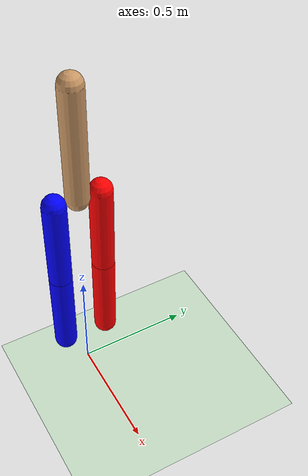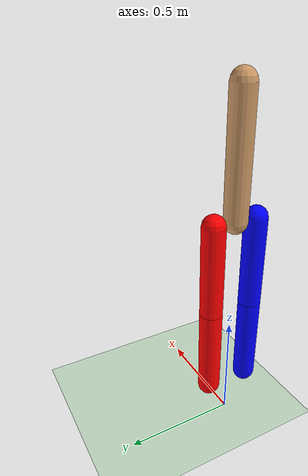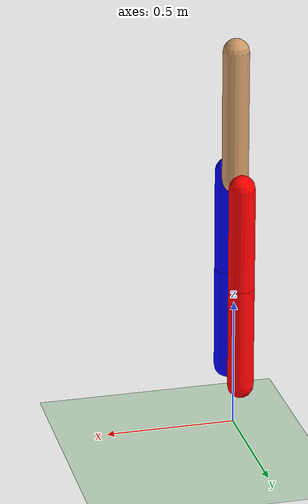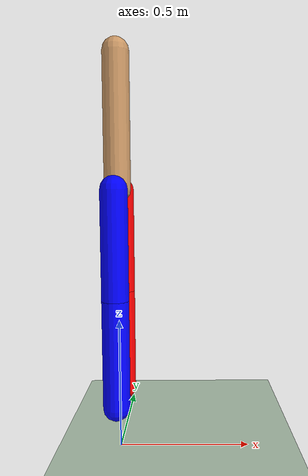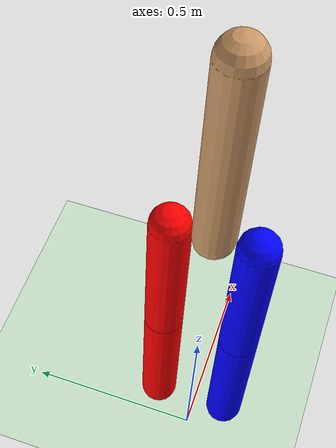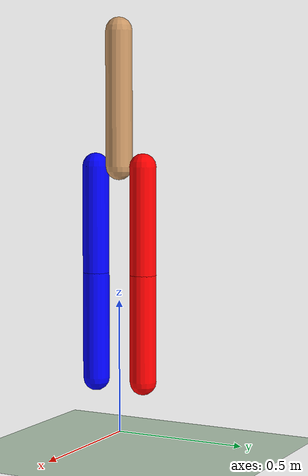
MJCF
<mujoco model="Rabbit">
  <compiler angle="degree" coordinate="local" inertiafromgeom="false"/>
  <default>
    <joint armature="0" damping="0" limited="false"/>
    <geom conaffinity="0" condim="3" contype="1" density="1000" friction=".7 .1 .1" rgba="0.8 0.6 .4 1"/>
  </default>
  <option integrator="RK4" timestep="0.002"/>
  <worldbody>
    <light cutoff="100" diffuse="1 1 1" dir="-0 0 -1.3" directional="true" exponent="1" pos="0 0 1.3" specular=".1 .1 .1"/>
    <geom conaffinity="1" condim="3" name="floor" pos="0 0 0" rgba="0.8 0.9 0.8 1" size="40 40 40" type="plane" material="MatPlane"/>
    <body name="torso" pos="0 0 1">
      <inertial mass="12" pos = "0 0 0.24" fullinertia = "0.001 0.001 0.001 0 0 0"/>
      <camera name="track" mode="trackcom" pos="0 -3 1" xyaxes="1 0 0 0 0 1"/>
      <joint armature="0" axis="1 0 0" damping="0" limited="false" name="rootx" pos="0 0 0" stiffness="0" type="slide"/>
      <joint armature="0" axis="0 0 1" damping="0" limited="false" name="rootz" pos="0 0 0" ref="1" stiffness="0" type="slide"/>
      <joint armature="0" axis="0 1 0" damping="0" limited="false" name="rooty" pos="0 0 0" stiffness="0" type="hinge"/>
      <geom conaffinity="1" friction="0.9" fromto="0 0 0 0 0 0.5" name="torso_geom" size="0.05" type="capsule"/>
      <body name="left_thigh" pos="0 0.1 0">
        <inertial mass = "6.8" pos = "0 0 -0.11" fullinertia = "0.001 0.001 0.001 0 0 0"/>
        <joint axis="0 -1 0" name="left_thigh_joint" pos="0 0 0" type="hinge"/>
        <geom friction="0.9" fromto="0 0 -0.4 0 0 0" name="left_thigh_geom" size="0.05" type="capsule" rgba =  "1 0 0 1"/>
        <body name="left_shin" pos="0 0 -0.4">
          <inertial mass = "3.2"  pos = "0 0 -0.24" fullinertia = "0.001 0.001 0.001 0 0 0"/>
          <joint axis="0 -1 0" name="left_knee_joint" pos="0 0 0" type="hinge"/>
          <geom friction="0.9" fromto="0 0 -0.4 0 0 0" name="left_shin_geom" size="0.05" type="capsule" rgba =  "1 0 0 1"/>
        </body>
      </body>
      <!-- copied and then replace thigh->thigh_left, leg->leg_left, foot->foot_right -->
      <body name="right_thigh" pos="0 -0.1 0">
        <inertial mass = "6.8" pos = "0 0 -0.11" fullinertia = "0.001 0.001 0.001 0 0 0"/>
        <joint axis="0 -1 0" name="right_thigh_joint" pos="0 0 0" type="hinge"/>
        <geom friction="0.9" fromto="0 0 -0.4 0 0 0" name="right_thigh_geom" size="0.05" type="capsule" rgba =  "0 0 1 1"/>
        <body name="right_shin" pos="0 0 -0.4">
          <inertial mass = "3.2" pos = "0 0 -0.24" fullinertia = "0.001 0.001 0.001 0 0 0"/>
          <joint axis="0 -1 0" name="right_knee_joint" pos="0 0 0" type="hinge"/>
          <geom friction="0.9" fromto="0 0 -0.4 0 0 0" name="right_shin_geom" size="0.05" type="capsule" rgba =  "0 0 1 1"/>
        </body>
      </body>
    </body>
  </worldbody>
  <actuator>

    <motor joint="left_thigh_joint"/>
    <motor joint="left_knee_joint"/>
    <motor joint="right_thigh_joint"/>
    <motor joint="right_knee_joint"/>
  </actuator>

    <asset>
        <texture type="skybox" builtin="gradient" rgb1=".4 .5 .6" rgb2="0 0 0"
            width="100" height="100"/>
        <texture builtin="flat" height="1278" mark="cross" markrgb="1 1 1" name="texgeom" random="0.01" rgb1="0.8 0.6 0.4" rgb2="0.8 0.6 0.4" type="cube" width="127"/>
        <texture builtin="checker" height="100" name="texplane" rgb1="0 0 0" rgb2="0.8 0.8 0.8" type="2d" width="100"/>
        <material name="MatPlane" reflectance="0.5" shininess="1" specular="1" texrepeat="60 60" texture="texplane"/>
        <material name="geom" texture="texgeom" texuniform="true"/>
    </asset>
</mujoco>
